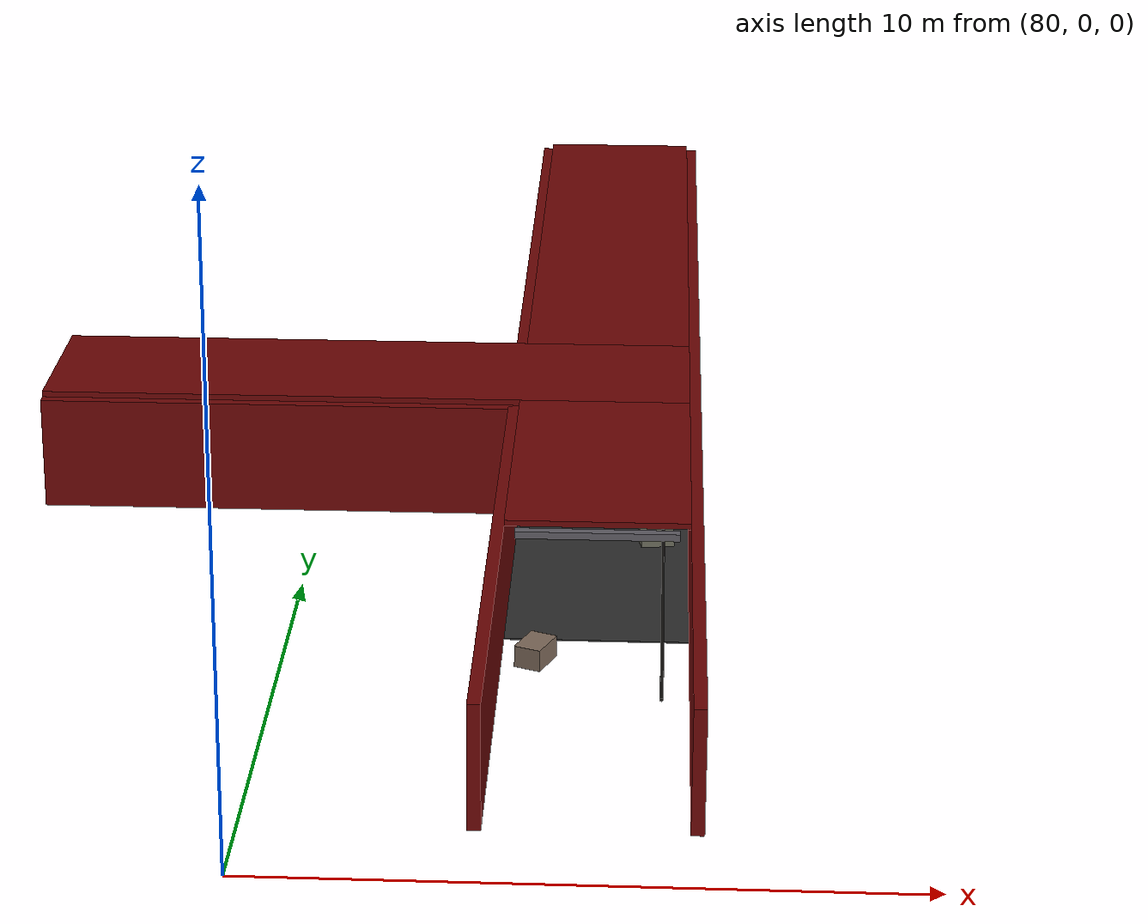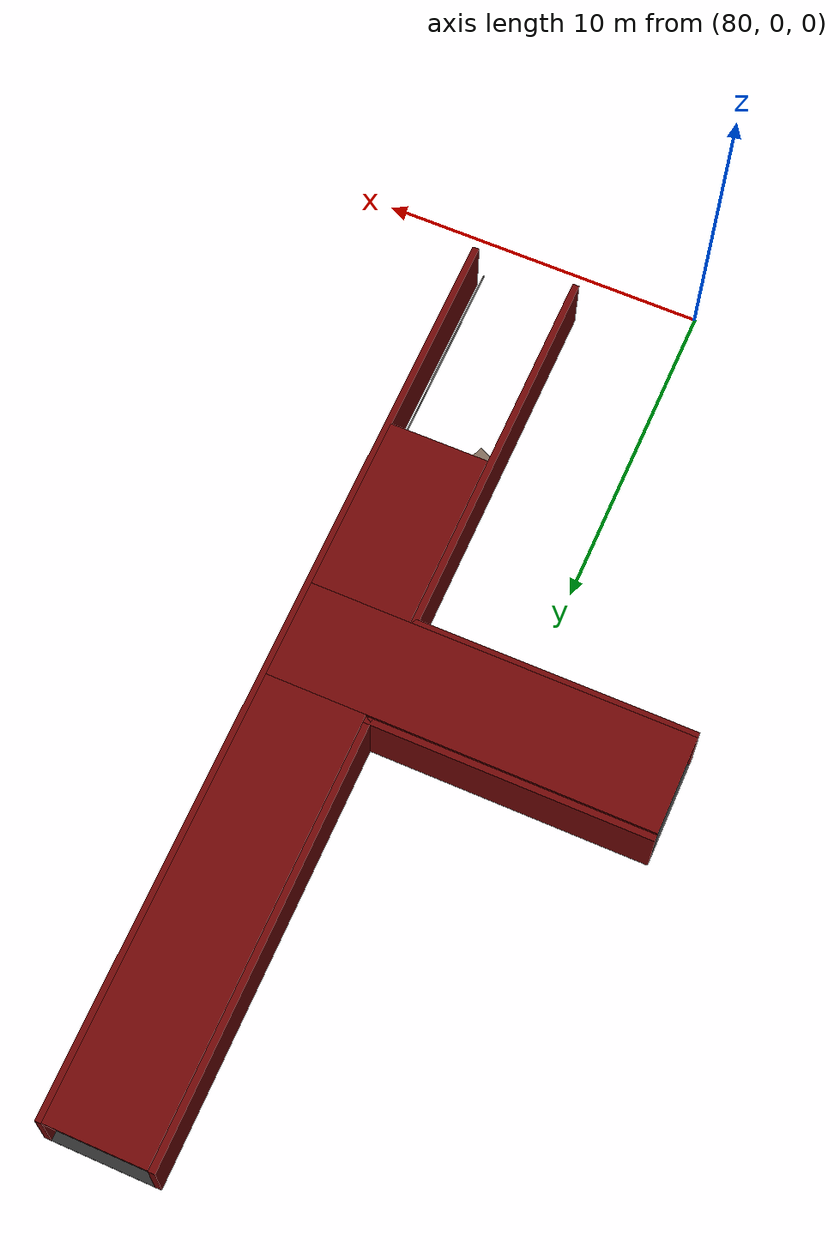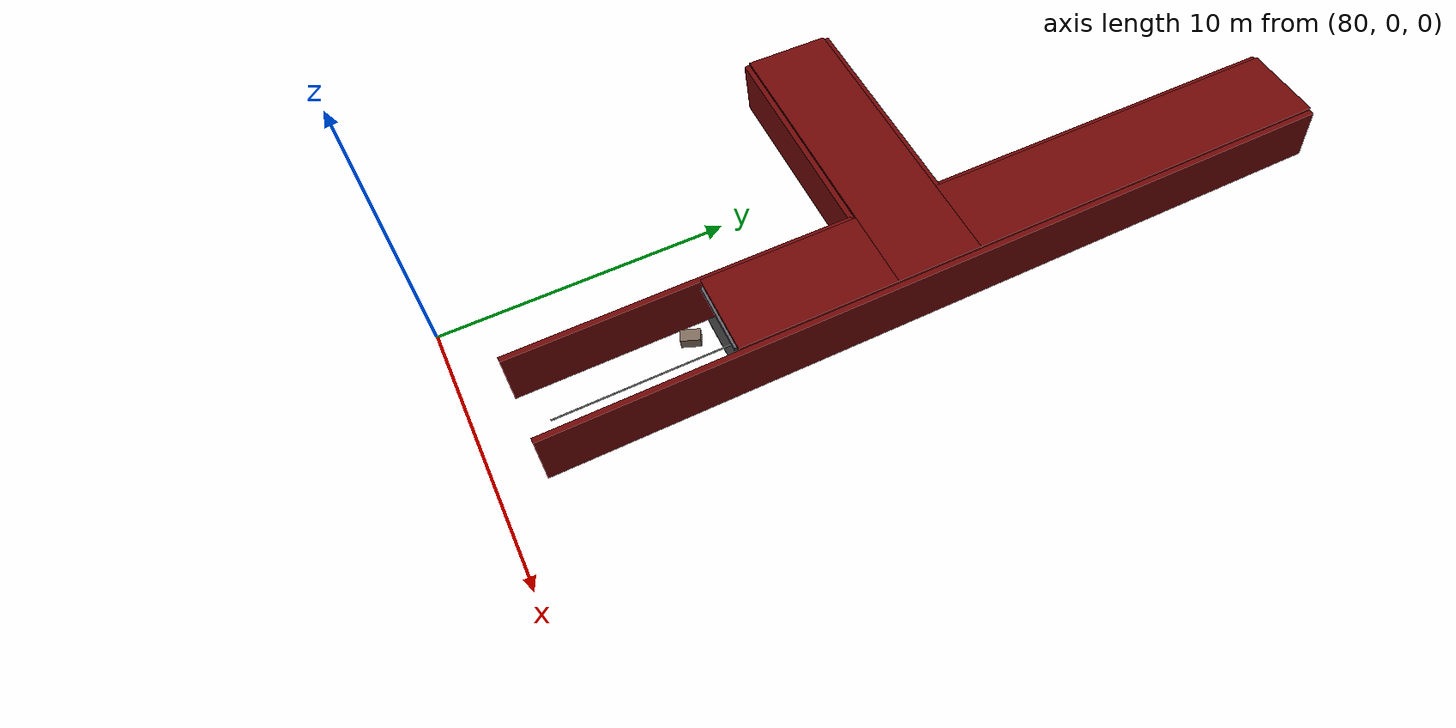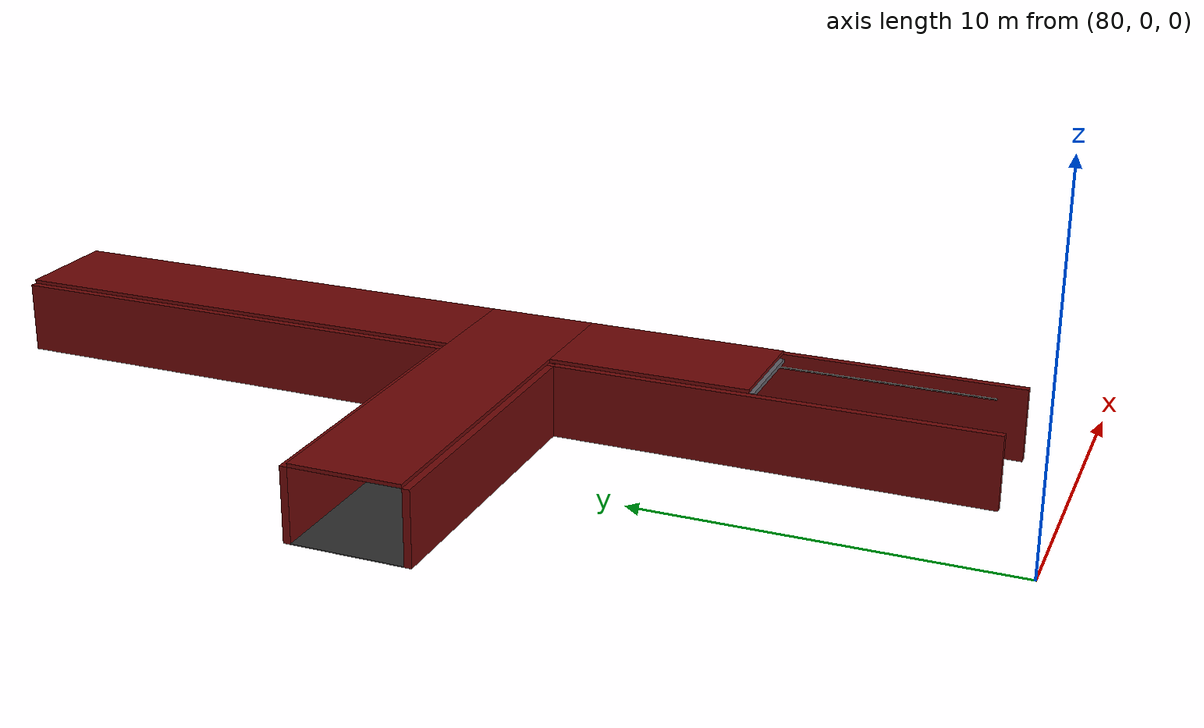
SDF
<sdf version="1.6">
 <world name="connected_branch_corridor_world">
  <include><uri>model://sun</uri></include>
  <model name="corridor_floor_09">
   <static>true</static>
   <pose>85 10.75 0.01 0 0 0</pose>
   <link name="link">
    <visual name="visual">
     <geometry><box><size>3 5.5 0.02</size></box></geometry>
     <material><ambient>0.11 0.11 0.11 1</ambient><diffuse>0.18 0.18 0.18 1</diffuse></material>
    </visual>
   </link>
  </model>
  <model name="corridor_ceiling_09">
   <static>true</static>
   <pose>85 10.75 2.05 0 0 0</pose>
   <link name="link">
    <collision name="collision"><geometry><box><size>3 5.5 0.1</size></box></geometry></collision>
    <visual name="visual">
     <geometry><box><size>3 5.5 0.1</size></box></geometry>
     <material><ambient>0.25 0.015 0.015 1</ambient><diffuse>0.43 0.025 0.025 1</diffuse></material>
    </visual>
   </link>
  </model>
  <model name="corridor_floor_10">
   <static>true</static>
   <pose>80.75 15 0.01 0 0 0</pose>
   <link name="link">
    <visual name="visual">
     <geometry><box><size>11.5 3 0.02</size></box></geometry>
     <material><ambient>0.11 0.11 0.11 1</ambient><diffuse>0.18 0.18 0.18 1</diffuse></material>
    </visual>
   </link>
  </model>
  <model name="corridor_ceiling_10">
   <static>true</static>
   <pose>80.75 15 2.05 0 0 0</pose>
   <link name="link">
    <collision name="collision"><geometry><box><size>11.5 3 0.1</size></box></geometry></collision>
    <visual name="visual">
     <geometry><box><size>11.5 3 0.1</size></box></geometry>
     <material><ambient>0.25 0.015 0.015 1</ambient><diffuse>0.43 0.025 0.025 1</diffuse></material>
    </visual>
   </link>
  </model>
  <model name="corridor_floor_11">
   <static>true</static>
   <pose>85 23.25 0.01 0 0 0</pose>
   <link name="link">
    <visual name="visual">
     <geometry><box><size>3 13.5 0.02</size></box></geometry>
     <material><ambient>0.11 0.11 0.11 1</ambient><diffuse>0.18 0.18 0.18 1</diffuse></material>
    </visual>
   </link>
  </model>
  <model name="corridor_ceiling_11">
   <static>true</static>
   <pose>85 23.25 2.05 0 0 0</pose>
   <link name="link">
    <collision name="collision"><geometry><box><size>3 13.5 0.1</size></box></geometry></collision>
    <visual name="visual">
     <geometry><box><size>3 13.5 0.1</size></box></geometry>
     <material><ambient>0.25 0.015 0.015 1</ambient><diffuse>0.43 0.025 0.025 1</diffuse></material>
    </visual>
   </link>
  </model>
  <model name="wall_08_south">
   <static>true</static>
   <pose>79.25 13.4 1 0 0 0</pose>
   <link name="link">
    <collision name="collision"><geometry><box><size>8.5 0.2 2</size></box></geometry></collision>
    <visual name="visual">
     <geometry><box><size>8.5 0.2 2</size></box></geometry>
     <material><ambient>0.25 0.015 0.015 1</ambient><diffuse>0.43 0.025 0.025 1</diffuse></material>
    </visual>
   </link>
  </model>
  <model name="wall_09_north">
   <static>true</static>
   <pose>79.25 16.6 1 0 0 0</pose>
   <link name="link">
    <collision name="collision"><geometry><box><size>8.5 0.2 2</size></box></geometry></collision>
    <visual name="visual">
     <geometry><box><size>8.5 0.2 2</size></box></geometry>
     <material><ambient>0.25 0.015 0.015 1</ambient><diffuse>0.43 0.025 0.025 1</diffuse></material>
    </visual>
   </link>
  </model>
  <model name="wall_16_west">
   <static>true</static>
   <pose>83.4 7.5 1 0 0 0</pose>
   <link name="link">
    <collision name="collision"><geometry><box><size>0.2 12 2</size></box></geometry></collision>
    <visual name="visual">
     <geometry><box><size>0.2 12 2</size></box></geometry>
     <material><ambient>0.25 0.015 0.015 1</ambient><diffuse>0.43 0.025 0.025 1</diffuse></material>
    </visual>
   </link>
  </model>
  <model name="wall_17_west">
   <static>true</static>
   <pose>83.4 23.25 1 0 0 0</pose>
   <link name="link">
    <collision name="collision"><geometry><box><size>0.2 13.5 2</size></box></geometry></collision>
    <visual name="visual">
     <geometry><box><size>0.2 13.5 2</size></box></geometry>
     <material><ambient>0.25 0.015 0.015 1</ambient><diffuse>0.43 0.025 0.025 1</diffuse></material>
    </visual>
   </link>
  </model>
  <model name="wall_18_east">
   <static>true</static>
   <pose>86.6 15.75 1 0 0 0</pose>
   <link name="link">
    <collision name="collision"><geometry><box><size>0.2 28.5 2</size></box></geometry></collision>
    <visual name="visual">
     <geometry><box><size>0.2 28.5 2</size></box></geometry>
     <material><ambient>0.25 0.015 0.015 1</ambient><diffuse>0.43 0.025 0.025 1</diffuse></material>
    </visual>
   </link>
  </model>
  <model name="feature_crate_upper_branch_01">
   <static>true</static>
   <pose>84.05 7.20 0.18 0 0 -0.4</pose>
   <link name="link">
    <collision name="collision"><geometry><box><size>0.45 0.65 0.36</size></box></geometry></collision>
    <visual name="visual">
     <geometry><box><size>0.45 0.65 0.36</size></box></geometry>
     <material><ambient>0.30 0.25 0.22 1</ambient><diffuse>0.50 0.42 0.36 1</diffuse></material>
    </visual>
   </link>
  </model>
  <model name="feature_low_block_upper_branch_02">
   <static>true</static>
   <pose>85.95 12.10 0.13 0 0 0.15</pose>
   <link name="link">
    <collision name="collision"><geometry><box><size>0.58 0.40 0.26</size></box></geometry></collision>
    <visual name="visual">
     <geometry><box><size>0.58 0.40 0.26</size></box></geometry>
     <material><ambient>0.27 0.27 0.24 1</ambient><diffuse>0.42 0.42 0.36 1</diffuse></material>
    </visual>
   </link>
  </model>
  <model name="feature_small_column_upper_end_03">
   <static>true</static>
   <pose>84.20 24.50 0.35 0 0 0</pose>
   <link name="link">
    <collision name="collision">
     <geometry><cylinder><radius>0.16</radius><length>0.70</length></cylinder></geometry>
    </collision>
    <visual name="visual">
     <geometry><cylinder><radius>0.16</radius><length>0.70</length></cylinder></geometry>
     <material><ambient>0.34 0.32 0.30 1</ambient><diffuse>0.50 0.48 0.45 1</diffuse></material>
    </visual>
   </link>
  </model>
  <model name="feature_cable_upper_branch_y_01">
   <static>true</static>
   <pose>86.05 15.70 1.80 1.5708 0 0</pose>
   <link name="link">
    <collision name="collision">
     <geometry><cylinder><radius>0.025</radius><length>27.0</length></cylinder></geometry>
    </collision>
    <visual name="visual">
     <geometry><cylinder><radius>0.025</radius><length>27.0</length></cylinder></geometry>
     <material><ambient>0.025 0.022 0.018 1</ambient><diffuse>0.055 0.048 0.04 1</diffuse></material>
    </visual>
   </link>
  </model>
  <model name="feature_crossbeam_upper_branch_01">
   <static>true</static>
   <pose>85 8.0 1.88 0 0 0</pose>
   <link name="link">
    <collision name="collision"><geometry><box><size>2.65 0.16 0.12</size></box></geometry></collision>
    <visual name="visual">
     <geometry><box><size>2.65 0.16 0.12</size></box></geometry>
     <material><ambient>0.25 0.24 0.26 1</ambient><diffuse>0.38 0.37 0.40 1</diffuse></material>
    </visual>
   </link>
  </model>
  <model name="feature_wall_panel_upper_east_01">
   <static>true</static>
   <pose>86.46 20.0 1.10 0 0 0</pose>
   <link name="link">
    <collision name="collision"><geometry><box><size>0.08 2.8 0.70</size></box></geometry></collision>
    <visual name="visual">
     <geometry><box><size>0.08 2.8 0.70</size></box></geometry>
     <material><ambient>0.33 0.31 0.29 1</ambient><diffuse>0.47 0.45 0.41 1</diffuse></material>
    </visual>
   </link>
  </model>
 </world>
</sdf>
